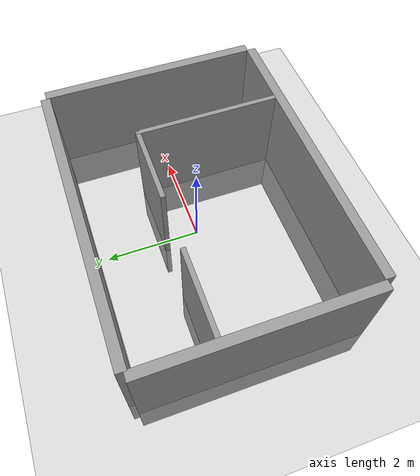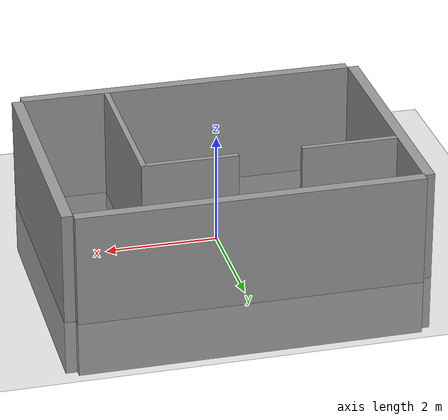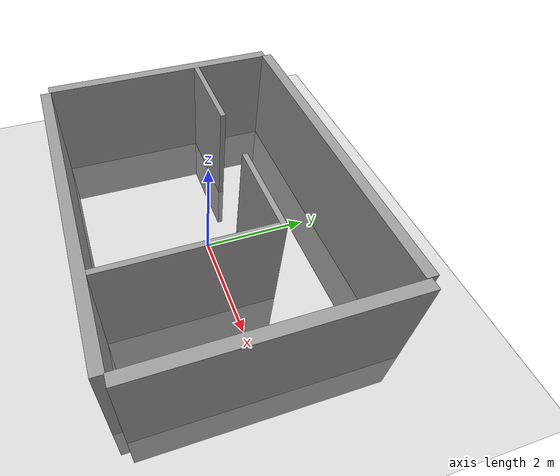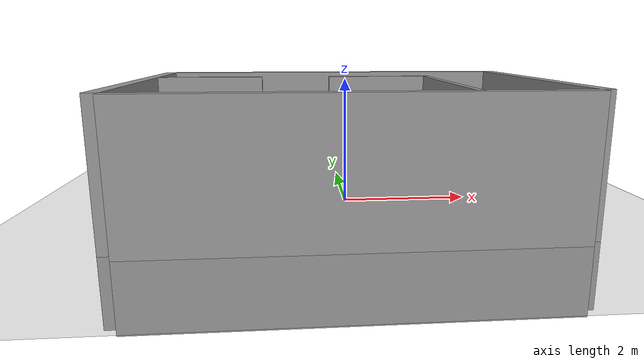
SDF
<sdf version="1.6">
 <world name="default">
  <light name="sun" type="directional">
   <pose>0 0 10 0 -0 0</pose>
   <diffuse>0.8 0.8 0.8 1</diffuse>
   <specular>0.2 0.2 0.2 1</specular>
   <attenuation>
    <range>1000</range>
    <constant>0.9</constant>
    <linear>0.01</linear>
    <quadratic>0.001</quadratic>
   </attenuation>
   <direction>0.5 0.1 -0.9</direction>
  </light>
  <scene><ambient>0.4 0.4 0.4 1</ambient><background>0.7 0.7 0.7 1</background><shadows>1</shadows></scene>
  <physics name="default_physics" default="0" type="ode">
   <max_step_size>0.01</max_step_size>
   <real_time_factor>1</real_time_factor>
   <real_time_update_rate>100</real_time_update_rate>
  </physics>
  <model name="ground_plane_0">
   <static>1</static>
   <link name="link">
    <collision name="collision">
     <geometry><plane><normal>0 0 1</normal><size>100 100</size></plane></geometry>
     <surface><friction><ode><mu>100</mu><mu2>50</mu2></ode></friction></surface>
    </collision>
    <visual name="visual">
     <cast_shadows>0</cast_shadows>
     <geometry><plane><normal>0 0 1</normal><size>100 100</size></plane></geometry>
     <material>
      <script><uri>file://media/materials/scripts/gazebo.material</uri><name>Gazebo/Grey</name></script>
     </material>
    </visual>
    <velocity_decay><linear>0</linear><angular>0</angular></velocity_decay>
   </link>
   <pose>0.497681 0 0 0 -0 0</pose>
  </model>
  <gravity>0 0 -9.8</gravity>
  <magnetic_field>6e-06 2.3e-05 -4.2e-05</magnetic_field>
  <atmosphere type="adiabatic"/>
  <audio><device>default</device></audio>
  <spherical_coordinates>
   <surface_model>EARTH_WGS84</surface_model>
   <latitude_deg>0</latitude_deg>
   <longitude_deg>0</longitude_deg>
   <elevation>0</elevation>
   <heading_deg>0</heading_deg>
  </spherical_coordinates>
  <model name="project1_walls">
   <link name="link">
    <inertial>
     <mass>1</mass>
     <inertia>
      <ixx>0.166667</ixx>
      <ixy>0</ixy>
      <ixz>0</ixz>
      <iyy>0.166667</iyy>
      <iyz>0</iyz>
      <izz>0.166667</izz>
     </inertia>
    </inertial>
    <pose>0.456452 -0.454155 -1.9e-05 0 -0 0</pose>
    <visual name="visual">
     <geometry><box><size>6.096 0.2 3</size></box></geometry>
     <material>
      <script><name>Gazebo/Grey</name><uri>file://media/materials/scripts/gazebo.material</uri></script>
      <shader type="vertex"><normal_map>__default__</normal_map></shader>
      <ambient>0.3 0.3 0.3 1</ambient>
      <diffuse>0.7 0.7 0.7 1</diffuse>
      <specular>0.01 0.01 0.01 1</specular>
      <emissive>0 0 0 1</emissive>
     </material>
    </visual>
    <collision name="collision">
     <geometry><box><size>1 1 1</size></box></geometry>
     <surface>
      <friction>
       <ode><mu>1</mu><mu2>1</mu2><fdir1>0 0 0</fdir1><slip1>0</slip1><slip2>0</slip2></ode>
       <torsional>
        <coefficient>1</coefficient>
        <patch_radius>0</patch_radius>
        <surface_radius>0</surface_radius>
        <use_patch_radius>1</use_patch_radius>
        <ode><slip>0</slip></ode>
       </torsional>
      </friction>
      <bounce><restitution_coefficient>0</restitution_coefficient><threshold>1e+06</threshold></bounce>
      <contact>
       <collide_without_contact>0</collide_without_contact>
       <collide_without_contact_bitmask>1</collide_without_contact_bitmask>
       <collide_bitmask>1</collide_bitmask>
       <ode>
        <soft_cfm>0</soft_cfm>
        <soft_erp>0.2</soft_erp>
        <kp>1e+13</kp>
        <kd>1</kd>
        <max_vel>0.01</max_vel>
        <min_depth>0</min_depth>
       </ode>
       <bullet>
        <split_impulse>1</split_impulse>
        <split_impulse_penetration_threshold>-0.01</split_impulse_penetration_threshold>
        <soft_cfm>0</soft_cfm>
        <soft_erp>0.2</soft_erp>
        <kp>1e+13</kp>
        <kd>1</kd>
       </bullet>
      </contact>
     </surface>
    </collision>
   </link>
   <link name="link_0">
    <inertial>
     <mass>1</mass>
     <inertia>
      <ixx>0.166667</ixx>
      <ixy>0</ixy>
      <ixz>0</ixz>
      <iyy>0.166667</iyy>
      <iyz>0</iyz>
      <izz>0.166667</izz>
     </inertia>
    </inertial>
    <pose>3.58595 1.91121 -0.000568 -0.000404 -1e-06 0</pose>
    <visual name="visual">
     <geometry><box><size>0.2 4.57 3</size></box></geometry>
     <material>
      <lighting>1</lighting>
      <script><uri>file://media/materials/scripts/gazebo.material</uri><name>Gazebo/Grey</name></script>
      <shader type="vertex"><normal_map>__default__</normal_map></shader>
      <ambient>0.3 0.3 0.3 1</ambient>
      <diffuse>0.7 0.7 0.7 1</diffuse>
      <specular>0.01 0.01 0.01 1</specular>
      <emissive>0 0 0 1</emissive>
     </material>
    </visual>
    <collision name="collision">
     <geometry><box><size>1 1 1</size></box></geometry>
     <surface>
      <friction>
       <ode><mu>1</mu><mu2>1</mu2><fdir1>0 0 0</fdir1><slip1>0</slip1><slip2>0</slip2></ode>
       <torsional>
        <coefficient>1</coefficient>
        <patch_radius>0</patch_radius>
        <surface_radius>0</surface_radius>
        <use_patch_radius>1</use_patch_radius>
        <ode><slip>0</slip></ode>
       </torsional>
      </friction>
      <bounce><restitution_coefficient>0</restitution_coefficient><threshold>1e+06</threshold></bounce>
      <contact>
       <collide_without_contact>0</collide_without_contact>
       <collide_without_contact_bitmask>1</collide_without_contact_bitmask>
       <collide_bitmask>1</collide_bitmask>
       <ode>
        <soft_cfm>0</soft_cfm>
        <soft_erp>0.2</soft_erp>
        <kp>1e+13</kp>
        <kd>1</kd>
        <max_vel>0.01</max_vel>
        <min_depth>0</min_depth>
       </ode>
       <bullet>
        <split_impulse>1</split_impulse>
        <split_impulse_penetration_threshold>-0.01</split_impulse_penetration_threshold>
        <soft_cfm>0</soft_cfm>
        <soft_erp>0.2</soft_erp>
        <kp>1e+13</kp>
        <kd>1</kd>
       </bullet>
      </contact>
     </surface>
    </collision>
   </link>
   <link name="link_0_clone">
    <inertial>
     <mass>1</mass>
     <inertia>
      <ixx>0.166667</ixx>
      <ixy>0</ixy>
      <ixz>0</ixz>
      <iyy>0.166667</iyy>
      <iyz>0</iyz>
      <izz>0.166667</izz>
     </inertia>
    </inertial>
    <pose>-2.69601 1.89974 -0.001336 -0.000808 -2e-06 0</pose>
    <visual name="visual">
     <geometry><box><size>0.2 4.57 3</size></box></geometry>
     <material>
      <lighting>1</lighting>
      <script><uri>file://media/materials/scripts/gazebo.material</uri><name>Gazebo/Grey</name></script>
      <shader type="vertex"><normal_map>__default__</normal_map></shader>
      <ambient>0.3 0.3 0.3 1</ambient>
      <diffuse>0.7 0.7 0.7 1</diffuse>
      <specular>0.01 0.01 0.01 1</specular>
      <emissive>0 0 0 1</emissive>
     </material>
    </visual>
    <collision name="collision">
     <geometry><box><size>1 1 1</size></box></geometry>
     <surface>
      <friction>
       <ode><mu>1</mu><mu2>1</mu2><fdir1>0 0 0</fdir1><slip1>0</slip1><slip2>0</slip2></ode>
       <torsional>
        <coefficient>1</coefficient>
        <patch_radius>0</patch_radius>
        <surface_radius>0</surface_radius>
        <use_patch_radius>1</use_patch_radius>
        <ode><slip>0</slip></ode>
       </torsional>
      </friction>
      <bounce><restitution_coefficient>0</restitution_coefficient><threshold>1e+06</threshold></bounce>
      <contact>
       <collide_without_contact>0</collide_without_contact>
       <collide_without_contact_bitmask>1</collide_without_contact_bitmask>
       <collide_bitmask>1</collide_bitmask>
       <ode>
        <soft_cfm>0</soft_cfm>
        <soft_erp>0.2</soft_erp>
        <kp>1e+13</kp>
        <kd>1</kd>
        <max_vel>0.01</max_vel>
        <min_depth>0</min_depth>
       </ode>
       <bullet>
        <split_impulse>1</split_impulse>
        <split_impulse_penetration_threshold>-0.01</split_impulse_penetration_threshold>
        <soft_cfm>0</soft_cfm>
        <soft_erp>0.2</soft_erp>
        <kp>1e+13</kp>
        <kd>1</kd>
       </bullet>
      </contact>
     </surface>
    </collision>
   </link>
   <link name="link_clone">
    <inertial>
     <mass>1</mass>
     <inertia>
      <ixx>0.166667</ixx>
      <ixy>0</ixy>
      <ixz>0</ixz>
      <iyy>0.166667</iyy>
      <iyz>0</iyz>
      <izz>0.166667</izz>
     </inertia>
    </inertial>
    <pose>0.430358 4.21939 -0.001703 -0.000404 -1e-06 0</pose>
    <visual name="visual">
     <geometry><box><size>6.096 0.2 3</size></box></geometry>
     <material>
      <script><name>Gazebo/Grey</name><uri>file://media/materials/scripts/gazebo.material</uri></script>
      <shader type="vertex"><normal_map>__default__</normal_map></shader>
      <ambient>0.3 0.3 0.3 1</ambient>
      <diffuse>0.7 0.7 0.7 1</diffuse>
      <specular>0.01 0.01 0.01 1</specular>
      <emissive>0 0 0 1</emissive>
     </material>
    </visual>
    <collision name="collision">
     <geometry><box><size>1 1 1</size></box></geometry>
     <surface>
      <friction>
       <ode><mu>1</mu><mu2>1</mu2><fdir1>0 0 0</fdir1><slip1>0</slip1><slip2>0</slip2></ode>
       <torsional>
        <coefficient>1</coefficient>
        <patch_radius>0</patch_radius>
        <surface_radius>0</surface_radius>
        <use_patch_radius>1</use_patch_radius>
        <ode><slip>0</slip></ode>
       </torsional>
      </friction>
      <bounce><restitution_coefficient>0</restitution_coefficient><threshold>1e+06</threshold></bounce>
      <contact>
       <collide_without_contact>0</collide_without_contact>
       <collide_without_contact_bitmask>1</collide_without_contact_bitmask>
       <collide_bitmask>1</collide_bitmask>
       <ode>
        <soft_cfm>0</soft_cfm>
        <soft_erp>0.2</soft_erp>
        <kp>1e+13</kp>
        <kd>1</kd>
        <max_vel>0.01</max_vel>
        <min_depth>0</min_depth>
       </ode>
       <bullet>
        <split_impulse>1</split_impulse>
        <split_impulse_penetration_threshold>-0.01</split_impulse_penetration_threshold>
        <soft_cfm>0</soft_cfm>
        <soft_erp>0.2</soft_erp>
        <kp>1e+13</kp>
        <kd>1</kd>
       </bullet>
      </contact>
     </surface>
    </collision>
   </link>
   <static>0</static>
   <pose>-0.47708 -1.91368 0.499798 0.000404 1e-06 0</pose>
  </model>
  <model name="hallways">
   <link name="link">
    <inertial>
     <mass>1</mass>
     <inertia>
      <ixx>0.166667</ixx>
      <ixy>0</ixy>
      <ixz>0</ixz>
      <iyy>0.166667</iyy>
      <iyz>0</iyz>
      <izz>0.166667</izz>
     </inertia>
    </inertial>
    <pose>0.500081 0.012393 0 0 -0 0</pose>
    <visual name="visual">
     <geometry><box><size>0.1 3.048 3</size></box></geometry>
     <material>
      <script><name>Gazebo/Grey</name><uri>file://media/materials/scripts/gazebo.material</uri></script>
      <shader type="vertex"><normal_map>__default__</normal_map></shader>
      <ambient>0.3 0.3 0.3 1</ambient>
      <diffuse>0.7 0.7 0.7 1</diffuse>
      <specular>0.01 0.01 0.01 1</specular>
      <emissive>0 0 0 1</emissive>
     </material>
     <pose>-0.01 0 0 0 -0 0</pose>
    </visual>
    <collision name="collision">
     <geometry><box><size>1 1 1</size></box></geometry>
     <surface>
      <friction>
       <ode><mu>1</mu><mu2>1</mu2><fdir1>0 0 0</fdir1><slip1>0</slip1><slip2>0</slip2></ode>
       <torsional>
        <coefficient>1</coefficient>
        <patch_radius>0</patch_radius>
        <surface_radius>0</surface_radius>
        <use_patch_radius>1</use_patch_radius>
        <ode><slip>0</slip></ode>
       </torsional>
      </friction>
      <bounce><restitution_coefficient>0</restitution_coefficient><threshold>1e+06</threshold></bounce>
      <contact>
       <collide_without_contact>0</collide_without_contact>
       <collide_without_contact_bitmask>1</collide_without_contact_bitmask>
       <collide_bitmask>1</collide_bitmask>
       <ode>
        <soft_cfm>0</soft_cfm>
        <soft_erp>0.2</soft_erp>
        <kp>1e+13</kp>
        <kd>1</kd>
        <max_vel>0.01</max_vel>
        <min_depth>0</min_depth>
       </ode>
       <bullet>
        <split_impulse>1</split_impulse>
        <split_impulse_penetration_threshold>-0.01</split_impulse_penetration_threshold>
        <soft_cfm>0</soft_cfm>
        <soft_erp>0.2</soft_erp>
        <kp>1e+13</kp>
        <kd>1</kd>
       </bullet>
      </contact>
     </surface>
    </collision>
   </link>
   <link name="link_clone">
    <inertial>
     <mass>1</mass>
     <inertia>
      <ixx>0.166667</ixx>
      <ixy>0</ixy>
      <ixz>0</ixz>
      <iyy>0.166667</iyy>
      <iyz>0</iyz>
      <izz>0.166667</izz>
     </inertia>
    </inertial>
    <pose>-0.323938 1.48808 0 0 -0 0</pose>
    <visual name="visual">
     <geometry><box><size>1.724 0.1 3</size></box></geometry>
     <material>
      <script><name>Gazebo/Grey</name><uri>file://media/materials/scripts/gazebo.material</uri></script>
      <shader type="vertex"><normal_map>__default__</normal_map></shader>
      <ambient>0.3 0.3 0.3 1</ambient>
      <diffuse>0.7 0.7 0.7 1</diffuse>
      <specular>0.01 0.01 0.01 1</specular>
      <emissive>0 0 0 1</emissive>
     </material>
     <pose>-0.01 0 0 0 -0 0</pose>
    </visual>
    <collision name="collision">
     <geometry><box><size>1 1 1</size></box></geometry>
     <surface>
      <friction>
       <ode><mu>1</mu><mu2>1</mu2><fdir1>0 0 0</fdir1><slip1>0</slip1><slip2>0</slip2></ode>
       <torsional>
        <coefficient>1</coefficient>
        <patch_radius>0</patch_radius>
        <surface_radius>0</surface_radius>
        <use_patch_radius>1</use_patch_radius>
        <ode><slip>0</slip></ode>
       </torsional>
      </friction>
      <bounce><restitution_coefficient>0</restitution_coefficient><threshold>1e+06</threshold></bounce>
      <contact>
       <collide_without_contact>0</collide_without_contact>
       <collide_without_contact_bitmask>1</collide_without_contact_bitmask>
       <collide_bitmask>1</collide_bitmask>
       <ode>
        <soft_cfm>0</soft_cfm>
        <soft_erp>0.2</soft_erp>
        <kp>1e+13</kp>
        <kd>1</kd>
        <max_vel>0.01</max_vel>
        <min_depth>0</min_depth>
       </ode>
       <bullet>
        <split_impulse>1</split_impulse>
        <split_impulse_penetration_threshold>-0.01</split_impulse_penetration_threshold>
        <soft_cfm>0</soft_cfm>
        <soft_erp>0.2</soft_erp>
        <kp>1e+13</kp>
        <kd>1</kd>
       </bullet>
      </contact>
     </surface>
    </collision>
   </link>
   <link name="link_clone_clone">
    <inertial>
     <mass>1</mass>
     <inertia>
      <ixx>0.166667</ixx>
      <ixy>0</ixy>
      <ixz>0</ixz>
      <iyy>0.166667</iyy>
      <iyz>0</iyz>
      <izz>0.166667</izz>
     </inertia>
    </inertial>
    <pose>-3.18354 1.48849 0 0 -0 0</pose>
    <visual name="visual">
     <geometry><box><size>1.724 0.1 3</size></box></geometry>
     <material>
      <script><name>Gazebo/Grey</name><uri>file://media/materials/scripts/gazebo.material</uri></script>
      <shader type="vertex"><normal_map>__default__</normal_map></shader>
      <ambient>0.3 0.3 0.3 1</ambient>
      <diffuse>0.7 0.7 0.7 1</diffuse>
      <specular>0.01 0.01 0.01 1</specular>
      <emissive>0 0 0 1</emissive>
     </material>
     <pose>-0.01 0 0 0 -0 0</pose>
    </visual>
    <collision name="collision">
     <geometry><box><size>1 1 1</size></box></geometry>
     <surface>
      <friction>
       <ode><mu>1</mu><mu2>1</mu2><fdir1>0 0 0</fdir1><slip1>0</slip1><slip2>0</slip2></ode>
       <torsional>
        <coefficient>1</coefficient>
        <patch_radius>0</patch_radius>
        <surface_radius>0</surface_radius>
        <use_patch_radius>1</use_patch_radius>
        <ode><slip>0</slip></ode>
       </torsional>
      </friction>
      <bounce><restitution_coefficient>0</restitution_coefficient><threshold>1e+06</threshold></bounce>
      <contact>
       <collide_without_contact>0</collide_without_contact>
       <collide_without_contact_bitmask>1</collide_without_contact_bitmask>
       <collide_bitmask>1</collide_bitmask>
       <ode>
        <soft_cfm>0</soft_cfm>
        <soft_erp>0.2</soft_erp>
        <kp>1e+13</kp>
        <kd>1</kd>
        <max_vel>0.01</max_vel>
        <min_depth>0</min_depth>
       </ode>
       <bullet>
        <split_impulse>1</split_impulse>
        <split_impulse_penetration_threshold>-0.01</split_impulse_penetration_threshold>
        <soft_cfm>0</soft_cfm>
        <soft_erp>0.2</soft_erp>
        <kp>1e+13</kp>
        <kd>1</kd>
       </bullet>
      </contact>
     </surface>
    </collision>
   </link>
   <static>0</static>
   <pose>0.98302 -0.758385 0.5 0 -0 0</pose>
  </model>
 </world>
</sdf>
